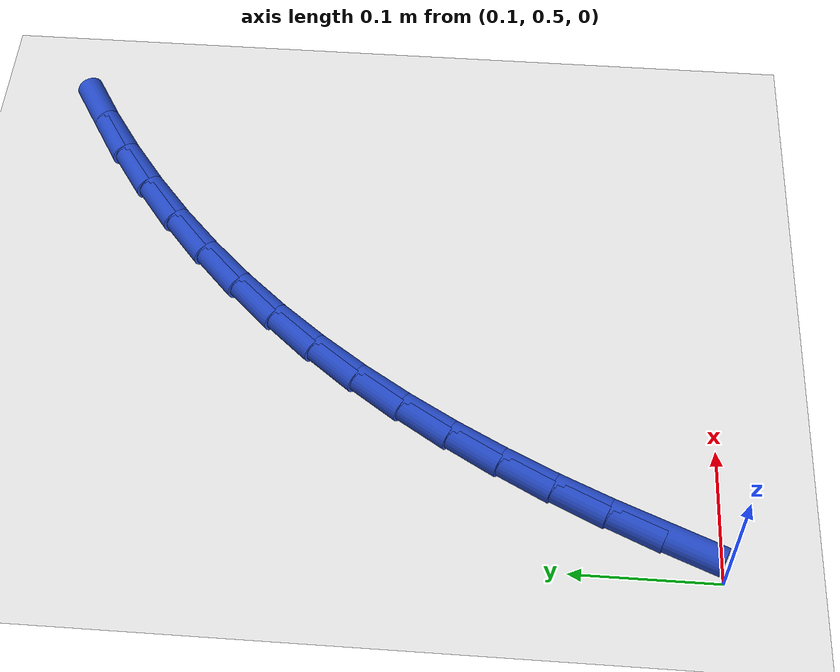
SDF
<sdf version="1.6">
 <world name="default">
  <model name="ground_plane">
   <static>1</static>
   <link name="link">
    <collision name="collision">
     <geometry><plane><normal>0 0 1</normal><size>100 100</size></plane></geometry>
     <surface><friction><ode><mu>100</mu><mu2>50</mu2></ode></friction></surface>
    </collision>
    <visual name="visual">
     <cast_shadows>0</cast_shadows>
     <geometry><plane><normal>0 0 1</normal><size>100 100</size></plane></geometry>
     <material>
      <script><uri>file://media/materials/scripts/gazebo.material</uri><name>Gazebo/WhiteGlow</name></script>
     </material>
    </visual>
   </link>
  </model>
  <model name="line">
   <link name="link_14">
    <pose>0.1259969385547538 0.5366030624196231 0.01 0 1.57 1.1715075593788333</pose>
    <collision name="collision">
     <geometry><cylinder><radius>0.01</radius><length>0.08</length></cylinder></geometry>
    </collision>
    <visual name="visual">
     <material>
      <script><name>Gazebo/Blue</name><uri>file://media/materials/scripts/gazebo.material</uri></script>
     </material>
     <geometry><cylinder><radius>0.01</radius><length>0.08</length></cylinder></geometry>
    </visual>
   </link>
   <link name="link_15">
    <pose>0.14142966925155018 0.5731774055497585 0.01 0 1.57 1.140264263077125</pose>
    <collision name="collision">
     <geometry><cylinder><radius>0.01</radius><length>0.08</length></cylinder></geometry>
    </collision>
    <visual name="visual">
     <material>
      <script><name>Gazebo/Blue</name><uri>file://media/materials/scripts/gazebo.material</uri></script>
     </material>
     <geometry><cylinder><radius>0.01</radius><length>0.08</length></cylinder></geometry>
    </visual>
   </link>
   <link name="link_16">
    <pose>0.15795109620851056 0.6091510185539878 0.01 0 1.57 1.105791793319847</pose>
    <collision name="collision">
     <geometry><cylinder><radius>0.01</radius><length>0.08</length></cylinder></geometry>
    </collision>
    <visual name="visual">
     <material>
      <script><name>Gazebo/Blue</name><uri>file://media/materials/scripts/gazebo.material</uri></script>
     </material>
     <geometry><cylinder><radius>0.01</radius><length>0.08</length></cylinder></geometry>
    </visual>
   </link>
   <link name="link_17">
    <pose>0.17565108680481645 0.6444312369390945 0.01 0 1.57 1.0680280374248856</pose>
    <collision name="collision">
     <geometry><cylinder><radius>0.01</radius><length>0.08</length></cylinder></geometry>
    </collision>
    <visual name="visual">
     <material>
      <script><name>Gazebo/Blue</name><uri>file://media/materials/scripts/gazebo.material</uri></script>
     </material>
     <geometry><cylinder><radius>0.01</radius><length>0.08</length></cylinder></geometry>
    </visual>
   </link>
   <link name="link_18">
    <pose>0.1946195084196494 0.6789253962118622 0.01 0 1.57 1.0269397396952495</pose>
    <collision name="collision">
     <geometry><cylinder><radius>0.01</radius><length>0.08</length></cylinder></geometry>
    </collision>
    <visual name="visual">
     <material>
      <script><name>Gazebo/Blue</name><uri>file://media/materials/scripts/gazebo.material</uri></script>
     </material>
     <geometry><cylinder><radius>0.01</radius><length>0.08</length></cylinder></geometry>
    </visual>
   </link>
   <link name="link_19">
    <pose>0.21494622843219074 0.7125408318790735 0.01 0 1.57 0.982535299894861</pose>
    <collision name="collision">
     <geometry><cylinder><radius>0.01</radius><length>0.08</length></cylinder></geometry>
    </collision>
    <visual name="visual">
     <material>
      <script><name>Gazebo/Blue</name><uri>file://media/materials/scripts/gazebo.material</uri></script>
     </material>
     <geometry><cylinder><radius>0.01</radius><length>0.08</length></cylinder></geometry>
    </visual>
   </link>
   <link name="link_20">
    <pose>0.23672111422162204 0.745184879447512 0.01 0 1.57 0.9348784759147478</pose>
    <collision name="collision">
     <geometry><cylinder><radius>0.01</radius><length>0.08</length></cylinder></geometry>
    </collision>
    <visual name="visual">
     <material>
      <script><name>Gazebo/Blue</name><uri>file://media/materials/scripts/gazebo.material</uri></script>
     </material>
     <geometry><cylinder><radius>0.01</radius><length>0.08</length></cylinder></geometry>
    </visual>
   </link>
   <link name="link_21">
    <pose>0.2600340331671247 0.7767648744239607 0.01 0 1.57 0.8841018892397132</pose>
    <collision name="collision">
     <geometry><cylinder><radius>0.01</radius><length>0.08</length></cylinder></geometry>
    </collision>
    <visual name="visual">
     <material>
      <script><name>Gazebo/Blue</name><uri>file://media/materials/scripts/gazebo.material</uri></script>
     </material>
     <geometry><cylinder><radius>0.01</radius><length>0.08</length></cylinder></geometry>
    </visual>
   </link>
   <link name="link_22">
    <pose>0.2849748526478802 0.807188152315203 0.01 0 1.57 0.831065877662476</pose>
    <collision name="collision">
     <geometry><cylinder><radius>0.01</radius><length>0.08</length></cylinder></geometry>
    </collision>
    <visual name="visual">
     <material>
      <script><name>Gazebo/Blue</name><uri>file://media/materials/scripts/gazebo.material</uri></script>
     </material>
     <geometry><cylinder><radius>0.01</radius><length>0.08</length></cylinder></geometry>
    </visual>
   </link>
   <link name="link_23">
    <pose>0.3115999284305398 0.8363632682947683 0.01 0 1.57 0.7784731479066586</pose>
    <collision name="collision">
     <geometry><cylinder><radius>0.01</radius><length>0.08</length></cylinder></geometry>
    </collision>
    <visual name="visual">
     <material>
      <script><name>Gazebo/Blue</name><uri>file://media/materials/scripts/gazebo.material</uri></script>
     </material>
     <geometry><cylinder><radius>0.01</radius><length>0.08</length></cylinder></geometry>
    </visual>
   </link>
   <link name="link_24">
    <pose>0.339828707298666 0.8642037603860506 0.01 0 1.57 0.726747478106805</pose>
    <collision name="collision">
     <geometry><cylinder><radius>0.01</radius><length>0.08</length></cylinder></geometry>
    </collision>
    <visual name="visual">
     <material>
      <script><name>Gazebo/Blue</name><uri>file://media/materials/scripts/gazebo.material</uri></script>
     </material>
     <geometry><cylinder><radius>0.01</radius><length>0.08</length></cylinder></geometry>
    </visual>
   </link>
   <link name="link_25">
    <pose>0.3695456779407081 0.8906244389244257 0.01 0 1.57 0.6756024190688973</pose>
    <collision name="collision">
     <geometry><cylinder><radius>0.01</radius><length>0.08</length></cylinder></geometry>
    </collision>
    <visual name="visual">
     <material>
      <script><name>Gazebo/Blue</name><uri>file://media/materials/scripts/gazebo.material</uri></script>
     </material>
     <geometry><cylinder><radius>0.01</radius><length>0.08</length></cylinder></geometry>
    </visual>
   </link>
   <link name="link_26">
    <pose>0.40063532903315574 0.9155401142457036 0.01 0 1.57 0.6247509940801138</pose>
    <collision name="collision">
     <geometry><cylinder><radius>0.01</radius><length>0.08</length></cylinder></geometry>
    </collision>
    <visual name="visual">
     <material>
      <script><name>Gazebo/Blue</name><uri>file://media/materials/scripts/gazebo.material</uri></script>
     </material>
     <geometry><cylinder><radius>0.01</radius><length>0.08</length></cylinder></geometry>
    </visual>
   </link>
   <link name="link_27">
    <pose>0.43298214925249834 0.9388655966856944 0.01 0 1.57 0.5739065913421142</pose>
    <collision name="collision">
     <geometry><cylinder><radius>0.01</radius><length>0.08</length></cylinder></geometry>
    </collision>
    <visual name="visual">
     <material>
      <script><name>Gazebo/Blue</name><uri>file://media/materials/scripts/gazebo.material</uri></script>
     </material>
     <geometry><cylinder><radius>0.01</radius><length>0.08</length></cylinder></geometry>
    </visual>
   </link>
   <link name="link_28">
    <pose>0.46647062727522653 0.9605156965802091 0.01 0 1.57 0.5227835188963549</pose>
    <collision name="collision">
     <geometry><cylinder><radius>0.01</radius><length>0.08</length></cylinder></geometry>
    </collision>
    <visual name="visual">
     <material>
      <script><name>Gazebo/Blue</name><uri>file://media/materials/scripts/gazebo.material</uri></script>
     </material>
     <geometry><cylinder><radius>0.01</radius><length>0.08</length></cylinder></geometry>
    </visual>
   </link>
  </model>
 </world>
</sdf>
